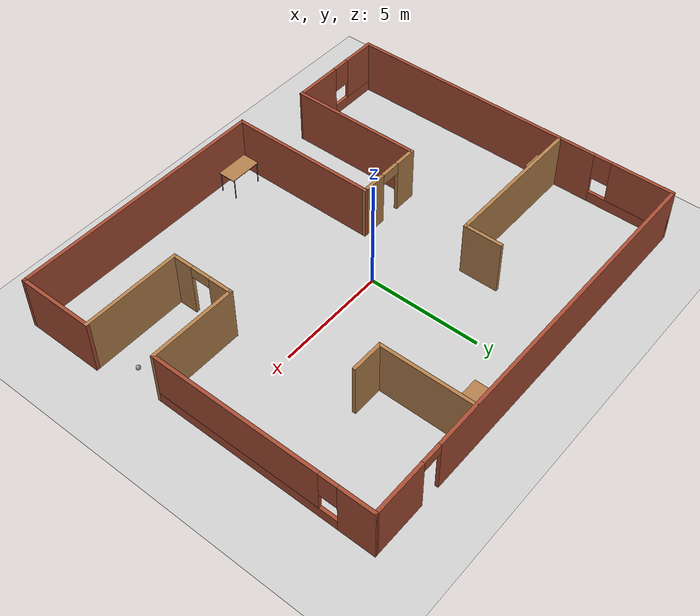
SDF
<sdf version="1.6">
 <world name="default">
  <light name="sun" type="directional">
   <pose>0 0 10 0 -0 0</pose>
   <diffuse>0.8 0.8 0.8 1</diffuse>
   <specular>0.2 0.2 0.2 1</specular>
   <attenuation>
    <range>1000</range>
    <constant>0.9</constant>
    <linear>0.01</linear>
    <quadratic>0.001</quadratic>
   </attenuation>
   <direction>-0.5 0.1 -0.9</direction>
  </light>
  <model name="ground_plane">
   <static>1</static>
   <link name="link">
    <collision name="collision">
     <geometry><plane><normal>0 0 1</normal><size>100 100</size></plane></geometry>
     <surface><friction><ode><mu>100</mu><mu2>50</mu2></ode></friction></surface>
    </collision>
    <visual name="visual">
     <cast_shadows>0</cast_shadows>
     <geometry><plane><normal>0 0 1</normal><size>100 100</size></plane></geometry>
     <material>
      <script><uri>file://media/materials/scripts/gazebo.material</uri><name>Gazebo/Grey</name></script>
     </material>
    </visual>
   </link>
  </model>
  <gravity>0 0 -9.8</gravity>
  <magnetic_field>6e-06 2.3e-05 -4.2e-05</magnetic_field>
  <atmosphere type="adiabatic"/>
  <physics name="default_physics" default="0" type="ode">
   <max_step_size>0.001</max_step_size>
   <real_time_factor>1</real_time_factor>
   <real_time_update_rate>1000</real_time_update_rate>
  </physics>
  <scene><ambient>0.4 0.4 0.4 1</ambient><background>0.7 0.7 0.7 1</background><shadows>1</shadows></scene>
  <spherical_coordinates>
   <surface_model>EARTH_WGS84</surface_model>
   <latitude_deg>0</latitude_deg>
   <longitude_deg>0</longitude_deg>
   <elevation>0</elevation>
   <heading_deg>0</heading_deg>
  </spherical_coordinates>
  <model name="newbuilding">
   <pose>0.26768 -0.427306 0 0 -0 0</pose>
   <link name="Wall_10">
    <pose>-9.5495 0.35 0 0 -0 1.5708</pose>
    <visual name="Wall_10_Visual_0">
     <pose>-1.81434 0 1.25 0 -0 0</pose>
     <geometry><box><size>11.8713 0.15 2.5</size></box></geometry>
     <material>
      <script><uri>file://media/materials/scripts/gazebo.material</uri><name>Gazebo/Bricks</name></script>
      <ambient>1 1 1 1</ambient>
     </material>
     <meta><layer>0</layer></meta>
    </visual>
    <collision name="Wall_10_Collision_0">
     <geometry><box><size>11.8713 0.15 2.5</size></box></geometry>
     <pose>-1.81434 0 1.25 0 -0 0</pose>
    </collision>
    <visual name="Wall_10_Visual_1">
     <pose>5.93566 0 0.25 0 -0 0</pose>
     <geometry><box><size>3.62868 0.15 0.5</size></box></geometry>
     <material>
      <script><uri>file://media/materials/scripts/gazebo.material</uri><name>Gazebo/Bricks</name></script>
      <ambient>1 1 1 1</ambient>
     </material>
     <meta><layer>0</layer></meta>
    </visual>
    <collision name="Wall_10_Collision_1">
     <geometry><box><size>3.62868 0.15 0.5</size></box></geometry>
     <pose>5.93566 0 0.25 0 -0 0</pose>
    </collision>
    <visual name="Wall_10_Visual_2">
     <pose>6.33566 0 1.5 0 -0 0</pose>
     <geometry><box><size>2.82868 0.15 2</size></box></geometry>
     <material>
      <script><uri>file://media/materials/scripts/gazebo.material</uri><name>Gazebo/Bricks</name></script>
      <ambient>1 1 1 1</ambient>
     </material>
     <meta><layer>0</layer></meta>
    </visual>
    <collision name="Wall_10_Collision_2">
     <geometry><box><size>2.82868 0.15 2</size></box></geometry>
     <pose>6.33566 0 1.5 0 -0 0</pose>
    </collision>
    <visual name="Wall_10_Visual_3">
     <pose>4.52132 0 1.9 0 -0 0</pose>
     <geometry><box><size>0.8 0.15 1.2</size></box></geometry>
     <material>
      <script><uri>file://media/materials/scripts/gazebo.material</uri><name>Gazebo/Bricks</name></script>
      <ambient>1 1 1 1</ambient>
     </material>
     <meta><layer>0</layer></meta>
    </visual>
    <collision name="Wall_10_Collision_3">
     <geometry><box><size>0.8 0.15 1.2</size></box></geometry>
     <pose>4.52132 0 1.9 0 -0 0</pose>
    </collision>
   </link>
   <link name="Wall_11">
    <pose>-0.249504 8.025 0 0 -0 0</pose>
    <visual name="Wall_11_Visual_0">
     <pose>-1.6974 0 1.25 0 -0 0</pose>
     <geometry><box><size>15.3552 0.15 2.5</size></box></geometry>
     <material>
      <script><uri>file://media/materials/scripts/gazebo.material</uri><name>Gazebo/Bricks</name></script>
      <ambient>1 1 1 1</ambient>
     </material>
     <meta><layer>0</layer></meta>
    </visual>
    <collision name="Wall_11_Collision_0">
     <geometry><box><size>15.3552 0.15 2.5</size></box></geometry>
     <pose>-1.6974 0 1.25 0 -0 0</pose>
    </collision>
    <visual name="Wall_11_Visual_1">
     <pose>8.1276 0 1.25 0 -0 0</pose>
     <geometry><box><size>2.49479 0.15 2.5</size></box></geometry>
     <material>
      <script><uri>file://media/materials/scripts/gazebo.material</uri><name>Gazebo/Bricks</name></script>
      <ambient>1 1 1 1</ambient>
     </material>
     <meta><layer>0</layer></meta>
    </visual>
    <collision name="Wall_11_Collision_1">
     <geometry><box><size>2.49479 0.15 2.5</size></box></geometry>
     <pose>8.1276 0 1.25 0 -0 0</pose>
    </collision>
    <visual name="Wall_11_Visual_2">
     <pose>6.4302 0 2.25 0 -0 0</pose>
     <geometry><box><size>0.9 0.15 0.5</size></box></geometry>
     <material>
      <script><uri>file://media/materials/scripts/gazebo.material</uri><name>Gazebo/Bricks</name></script>
      <ambient>1 1 1 1</ambient>
     </material>
     <meta><layer>0</layer></meta>
    </visual>
    <collision name="Wall_11_Collision_2">
     <geometry><box><size>0.9 0.15 0.5</size></box></geometry>
     <pose>6.4302 0 2.25 0 -0 0</pose>
    </collision>
   </link>
   <link name="Wall_12">
    <pose>9.0505 3.1 0 0 0 -1.5708</pose>
    <visual name="Wall_12_Visual_0">
     <pose>-4.20129 0 1.25 0 -0 0</pose>
     <geometry><box><size>1.59742 0.15 2.5</size></box></geometry>
     <material>
      <script><uri>file://media/materials/scripts/gazebo.material</uri><name>Gazebo/Bricks</name></script>
      <ambient>1 1 1 1</ambient>
     </material>
     <meta><layer>0</layer></meta>
    </visual>
    <collision name="Wall_12_Collision_0">
     <geometry><box><size>1.59742 0.15 2.5</size></box></geometry>
     <pose>-4.20129 0 1.25 0 -0 0</pose>
    </collision>
    <visual name="Wall_12_Visual_1">
     <pose>0.798711 0 0.25 0 -0 0</pose>
     <geometry><box><size>8.40258 0.15 0.5</size></box></geometry>
     <material>
      <script><uri>file://media/materials/scripts/gazebo.material</uri><name>Gazebo/Bricks</name></script>
      <ambient>1 1 1 1</ambient>
     </material>
     <meta><layer>0</layer></meta>
    </visual>
    <collision name="Wall_12_Collision_1">
     <geometry><box><size>8.40258 0.15 0.5</size></box></geometry>
     <pose>0.798711 0 0.25 0 -0 0</pose>
    </collision>
    <visual name="Wall_12_Visual_2">
     <pose>1.19871 0 1.5 0 -0 0</pose>
     <geometry><box><size>7.60258 0.15 2</size></box></geometry>
     <material>
      <script><uri>file://media/materials/scripts/gazebo.material</uri><name>Gazebo/Bricks</name></script>
      <ambient>1 1 1 1</ambient>
     </material>
     <meta><layer>0</layer></meta>
    </visual>
    <collision name="Wall_12_Collision_2">
     <geometry><box><size>7.60258 0.15 2</size></box></geometry>
     <pose>1.19871 0 1.5 0 -0 0</pose>
    </collision>
    <visual name="Wall_12_Visual_3">
     <pose>-3.00258 0 1.9 0 -0 0</pose>
     <geometry><box><size>0.8 0.15 1.2</size></box></geometry>
     <material>
      <script><uri>file://media/materials/scripts/gazebo.material</uri><name>Gazebo/Bricks</name></script>
      <ambient>1 1 1 1</ambient>
     </material>
     <meta><layer>0</layer></meta>
    </visual>
    <collision name="Wall_12_Collision_3">
     <geometry><box><size>0.8 0.15 1.2</size></box></geometry>
     <pose>-3.00258 0 1.9 0 -0 0</pose>
    </collision>
   </link>
   <link name="Wall_15">
    <collision name="Wall_15_Collision">
     <geometry><box><size>4 0.15 2.5</size></box></geometry>
     <pose>0 0 1.25 0 -0 0</pose>
    </collision>
    <visual name="Wall_15_Visual">
     <pose>0 0 1.25 0 -0 0</pose>
     <geometry><box><size>4 0.15 2.5</size></box></geometry>
     <material>
      <script><uri>file://media/materials/scripts/gazebo.material</uri><name>Gazebo/Wood</name></script>
      <ambient>1 1 1 1</ambient>
     </material>
     <meta><layer>0</layer></meta>
    </visual>
    <pose>7.1255 -1.825 0 0 -0 3.14159</pose>
   </link>
   <link name="Wall_16">
    <pose>5.2005 -3.25 0 0 0 -1.5708</pose>
    <visual name="Wall_16_Visual_0">
     <pose>-0.944828 0 1.25 0 -0 0</pose>
     <geometry><box><size>1.11034 0.15 2.5</size></box></geometry>
     <material>
      <script><uri>file://media/materials/scripts/gazebo.material</uri><name>Gazebo/Wood</name></script>
      <ambient>1 1 1 1</ambient>
     </material>
     <meta><layer>0</layer></meta>
    </visual>
    <collision name="Wall_16_Collision_0">
     <geometry><box><size>1.11034 0.15 2.5</size></box></geometry>
     <pose>-0.944828 0 1.25 0 -0 0</pose>
    </collision>
    <visual name="Wall_16_Visual_1">
     <pose>1.00517 0 1.25 0 -0 0</pose>
     <geometry><box><size>0.989656 0.15 2.5</size></box></geometry>
     <material>
      <script><uri>file://media/materials/scripts/gazebo.material</uri><name>Gazebo/Wood</name></script>
      <ambient>1 1 1 1</ambient>
     </material>
     <meta><layer>0</layer></meta>
    </visual>
    <collision name="Wall_16_Collision_1">
     <geometry><box><size>0.989656 0.15 2.5</size></box></geometry>
     <pose>1.00517 0 1.25 0 -0 0</pose>
    </collision>
    <visual name="Wall_16_Visual_2">
     <pose>0.060344 0 2.25 0 -0 0</pose>
     <geometry><box><size>0.9 0.15 0.5</size></box></geometry>
     <material>
      <script><uri>file://media/materials/scripts/gazebo.material</uri><name>Gazebo/Wood</name></script>
      <ambient>1 1 1 1</ambient>
     </material>
     <meta><layer>0</layer></meta>
    </visual>
    <collision name="Wall_16_Collision_2">
     <geometry><box><size>0.9 0.15 0.5</size></box></geometry>
     <pose>0.060344 0 2.25 0 -0 0</pose>
    </collision>
   </link>
   <link name="Wall_17">
    <collision name="Wall_17_Collision">
     <geometry><box><size>4.5 0.15 2.5</size></box></geometry>
     <pose>0 0 1.25 0 -0 0</pose>
    </collision>
    <visual name="Wall_17_Visual">
     <pose>0 0 1.25 0 -0 0</pose>
     <geometry><box><size>4.5 0.15 2.5</size></box></geometry>
     <material>
      <script><uri>file://media/materials/scripts/gazebo.material</uri><name>Gazebo/Wood</name></script>
      <ambient>1 1 1 1</ambient>
     </material>
     <meta><layer>0</layer></meta>
    </visual>
    <pose>7.3755 -4.675 0 0 -0 0</pose>
   </link>
   <link name="Wall_18">
    <collision name="Wall_18_Collision">
     <geometry><box><size>3.5 0.15 2.5</size></box></geometry>
     <pose>0 0 1.25 0 -0 0</pose>
    </collision>
    <visual name="Wall_18_Visual">
     <pose>0 0 1.25 0 -0 0</pose>
     <geometry><box><size>3.5 0.15 2.5</size></box></geometry>
     <material>
      <script><uri>file://media/materials/scripts/gazebo.material</uri><name>Gazebo/Bricks</name></script>
      <ambient>1 1 1 1</ambient>
     </material>
     <meta><layer>0</layer></meta>
    </visual>
    <pose>9.5505 -6.35 0 0 0 -1.5708</pose>
   </link>
   <link name="Wall_19">
    <collision name="Wall_19_Collision">
     <geometry><box><size>11.75 0.15 2.5</size></box></geometry>
     <pose>0 0 1.25 0 -0 0</pose>
    </collision>
    <visual name="Wall_19_Visual">
     <pose>0 0 1.25 0 -0 0</pose>
     <geometry><box><size>11.75 0.15 2.5</size></box></geometry>
     <material>
      <script><uri>file://media/materials/scripts/gazebo.material</uri><name>Gazebo/Bricks</name></script>
      <ambient>1 1 1 1</ambient>
     </material>
     <meta><layer>0</layer></meta>
    </visual>
    <pose>3.7505 -8.025 0 0 -0 3.14159</pose>
   </link>
   <link name="Wall_20">
    <collision name="Wall_20_Collision">
     <geometry><box><size>6.75 0.15 2.5</size></box></geometry>
     <pose>0 0 1.25 0 -0 0</pose>
    </collision>
    <visual name="Wall_20_Visual">
     <pose>0 0 1.25 0 -0 0</pose>
     <geometry><box><size>6.75 0.15 2.5</size></box></geometry>
     <material>
      <script><uri>file://media/materials/scripts/gazebo.material</uri><name>Gazebo/Bricks</name></script>
      <ambient>1 1 1 1</ambient>
     </material>
     <meta><layer>0</layer></meta>
    </visual>
    <pose>-2.0495 -4.725 0 0 -0 1.5708</pose>
   </link>
   <link name="Wall_21">
    <pose>-3.53778 -1.425 0 0 -0 3.14159</pose>
    <visual name="Wall_21_Visual_0">
     <pose>-0.971603 0 1.25 0 -0 0</pose>
     <geometry><box><size>1.18398 0.15 2.5</size></box></geometry>
     <material>
      <script><uri>file://media/materials/scripts/gazebo.material</uri><name>Gazebo/Wood</name></script>
      <ambient>1 1 1 1</ambient>
     </material>
     <meta><layer>0</layer></meta>
    </visual>
    <collision name="Wall_21_Collision_0">
     <geometry><box><size>1.18398 0.15 2.5</size></box></geometry>
     <pose>-0.971603 0 1.25 0 -0 0</pose>
    </collision>
    <visual name="Wall_21_Visual_1">
     <pose>1.04199 0 1.25 0 -0 0</pose>
     <geometry><box><size>1.04321 0.15 2.5</size></box></geometry>
     <material>
      <script><uri>file://media/materials/scripts/gazebo.material</uri><name>Gazebo/Wood</name></script>
      <ambient>1 1 1 1</ambient>
     </material>
     <meta><layer>0</layer></meta>
    </visual>
    <collision name="Wall_21_Collision_1">
     <geometry><box><size>1.04321 0.15 2.5</size></box></geometry>
     <pose>1.04199 0 1.25 0 -0 0</pose>
    </collision>
    <visual name="Wall_21_Visual_2">
     <pose>0.070388 0 2.25 0 -0 0</pose>
     <geometry><box><size>0.9 0.15 0.5</size></box></geometry>
     <material>
      <script><uri>file://media/materials/scripts/gazebo.material</uri><name>Gazebo/Wood</name></script>
      <ambient>1 1 1 1</ambient>
     </material>
     <meta><layer>0</layer></meta>
    </visual>
    <collision name="Wall_21_Collision_2">
     <geometry><box><size>0.9 0.15 0.5</size></box></geometry>
     <pose>0.070388 0 2.25 0 -0 0</pose>
    </collision>
   </link>
   <link name="Wall_22">
    <collision name="Wall_22_Collision">
     <geometry><box><size>6 0.15 2.5</size></box></geometry>
     <pose>0 0 1.25 0 -0 0</pose>
    </collision>
    <visual name="Wall_22_Visual">
     <pose>0 0 1.25 0 -0 0</pose>
     <geometry><box><size>6 0.15 2.5</size></box></geometry>
     <material>
      <script><uri>file://media/materials/scripts/gazebo.material</uri><name>Gazebo/Bricks</name></script>
      <ambient>1 1 1 1</ambient>
     </material>
     <meta><layer>0</layer></meta>
    </visual>
    <pose>-5.02606 -4.38059 0 0 0 -1.5708</pose>
   </link>
   <link name="Wall_26">
    <pose>-7.28778 -7.31529 0 0 0 -3.1373</pose>
    <visual name="Wall_26_Visual_0">
     <pose>-1.21852 0 1.25 0 -0 0</pose>
     <geometry><box><size>2.23644 0.15 2.5</size></box></geometry>
     <material>
      <script><uri>file://media/materials/scripts/gazebo.material</uri><name>Gazebo/Bricks</name></script>
      <ambient>1 1 1 1</ambient>
     </material>
     <meta><layer>0</layer></meta>
    </visual>
    <collision name="Wall_26_Collision_0">
     <geometry><box><size>2.23644 0.15 2.5</size></box></geometry>
     <pose>-1.21852 0 1.25 0 -0 0</pose>
    </collision>
    <visual name="Wall_26_Visual_1">
     <pose>1.11822 0 0.25 0 -0 0</pose>
     <geometry><box><size>2.43704 0.15 0.5</size></box></geometry>
     <material>
      <script><uri>file://media/materials/scripts/gazebo.material</uri><name>Gazebo/Bricks</name></script>
      <ambient>1 1 1 1</ambient>
     </material>
     <meta><layer>0</layer></meta>
    </visual>
    <collision name="Wall_26_Collision_1">
     <geometry><box><size>2.43704 0.15 0.5</size></box></geometry>
     <pose>1.11822 0 0.25 0 -0 0</pose>
    </collision>
    <visual name="Wall_26_Visual_2">
     <pose>1.51822 0 1.5 0 -0 0</pose>
     <geometry><box><size>1.63704 0.15 2</size></box></geometry>
     <material>
      <script><uri>file://media/materials/scripts/gazebo.material</uri><name>Gazebo/Bricks</name></script>
      <ambient>1 1 1 1</ambient>
     </material>
     <meta><layer>0</layer></meta>
    </visual>
    <collision name="Wall_26_Collision_2">
     <geometry><box><size>1.63704 0.15 2</size></box></geometry>
     <pose>1.51822 0 1.5 0 -0 0</pose>
    </collision>
    <visual name="Wall_26_Visual_3">
     <pose>0.299699 0 1.9 0 -0 0</pose>
     <geometry><box><size>0.8 0.15 1.2</size></box></geometry>
     <material>
      <script><uri>file://media/materials/scripts/gazebo.material</uri><name>Gazebo/Bricks</name></script>
      <ambient>1 1 1 1</ambient>
     </material>
     <meta><layer>0</layer></meta>
    </visual>
    <collision name="Wall_26_Collision_3">
     <geometry><box><size>0.8 0.15 1.2</size></box></geometry>
     <pose>0.299699 0 1.9 0 -0 0</pose>
    </collision>
   </link>
   <link name="Wall_28">
    <collision name="Wall_28_Collision">
     <geometry><box><size>6.75 0.15 2.5</size></box></geometry>
     <pose>0 0 1.25 0 -0 0</pose>
    </collision>
    <visual name="Wall_28_Visual">
     <pose>0 0 1.25 0 -0 0</pose>
     <geometry><box><size>6.75 0.15 2.5</size></box></geometry>
     <material>
      <script><uri>file://media/materials/scripts/gazebo.material</uri><name>Gazebo/Wood</name></script>
      <ambient>1 1 1 1</ambient>
     </material>
     <meta><layer>0</layer></meta>
    </visual>
    <pose>-6.2505 2.80829 0 0 -0 0</pose>
   </link>
   <link name="Wall_29">
    <collision name="Wall_29_Collision">
     <geometry><box><size>1.75 0.15 2.5</size></box></geometry>
     <pose>0 0 1.25 0 -0 0</pose>
    </collision>
    <visual name="Wall_29_Visual">
     <pose>0 0 1.25 0 -0 0</pose>
     <geometry><box><size>1.75 0.15 2.5</size></box></geometry>
     <material>
      <script><uri>file://media/materials/scripts/gazebo.material</uri><name>Gazebo/Wood</name></script>
      <ambient>1 1 1 1</ambient>
     </material>
     <meta><layer>0</layer></meta>
    </visual>
    <pose>-2.9505 3.60829 0 0 -0 1.5708</pose>
   </link>
   <link name="Wall_32">
    <collision name="Wall_32_Collision">
     <geometry><box><size>4.25 0.15 2.5</size></box></geometry>
     <pose>0 0 1.25 0 -0 0</pose>
    </collision>
    <visual name="Wall_32_Visual">
     <pose>0 0 1.25 0 -0 0</pose>
     <geometry><box><size>4.25 0.15 2.5</size></box></geometry>
     <material>
      <script><uri>file://media/materials/scripts/gazebo.material</uri><name>Gazebo/Wood</name></script>
      <ambient>1 1 1 1</ambient>
     </material>
     <meta><layer>0</layer></meta>
    </visual>
    <pose>3.70289 5.95804 0 0 0 -1.5708</pose>
   </link>
   <link name="Wall_33">
    <collision name="Wall_33_Collision">
     <geometry><box><size>1.5 0.15 2.5</size></box></geometry>
     <pose>0 0 1.25 0 -0 0</pose>
    </collision>
    <visual name="Wall_33_Visual">
     <pose>0 0 1.25 0 -0 0</pose>
     <geometry><box><size>1.5 0.15 2.5</size></box></geometry>
     <material>
      <script><uri>file://media/materials/scripts/gazebo.material</uri><name>Gazebo/Wood</name></script>
      <ambient>1 1 1 1</ambient>
     </material>
     <meta><layer>0</layer></meta>
    </visual>
    <pose>4.37789 3.90804 0 0 -0 0</pose>
   </link>
   <link name="Window_0">
    <collision name="Window_0_Collision">
     <geometry><box><size>0.8 0.17 0.8</size></box></geometry>
     <pose>0 0 0.4 0 -0 0</pose>
    </collision>
    <visual name="Window_0_Visual">
     <pose>0 0 0.4 0 -0 0</pose>
     <geometry><box><size>0.8 0.17 0.8</size></box></geometry>
     <material>
      <script><uri>file://media/materials/scripts/gazebo.material</uri><name>Gazebo/Grey</name></script>
     </material>
    </visual>
    <pose>-6.21558 7.8967 0.5 0 -0 0</pose>
   </link>
   <static>1</static>
  </model>
  <model name="table">
   <static>1</static>
   <link name="link">
    <collision name="surface">
     <pose>0 0 1 0 -0 0</pose>
     <geometry><box><size>1.5 0.8 0.03</size></box></geometry>
     <surface><friction><ode><mu>0.6</mu><mu2>0.6</mu2></ode></friction></surface>
    </collision>
    <visual name="visual1">
     <pose>0 0 1 0 -0 0</pose>
     <geometry><box><size>1.5 0.8 0.03</size></box></geometry>
     <material>
      <script><uri>file://media/materials/scripts/gazebo.material</uri><name>Gazebo/Wood</name></script>
     </material>
    </visual>
    <collision name="front_left_leg">
     <pose>0.68 0.38 0.5 0 -0 0</pose>
     <geometry><cylinder><radius>0.02</radius><length>1</length></cylinder></geometry>
    </collision>
    <visual name="front_left_leg">
     <pose>0.68 0.38 0.5 0 -0 0</pose>
     <geometry><cylinder><radius>0.02</radius><length>1</length></cylinder></geometry>
     <material>
      <script><uri>file://media/materials/scripts/gazebo.material</uri><name>Gazebo/Grey</name></script>
     </material>
    </visual>
    <collision name="front_right_leg">
     <pose>0.68 -0.38 0.5 0 -0 0</pose>
     <geometry><cylinder><radius>0.02</radius><length>1</length></cylinder></geometry>
    </collision>
    <visual name="front_right_leg">
     <pose>0.68 -0.38 0.5 0 -0 0</pose>
     <geometry><cylinder><radius>0.02</radius><length>1</length></cylinder></geometry>
     <material>
      <script><uri>file://media/materials/scripts/gazebo.material</uri><name>Gazebo/Grey</name></script>
     </material>
    </visual>
    <collision name="back_right_leg">
     <pose>-0.68 -0.38 0.5 0 -0 0</pose>
     <geometry><cylinder><radius>0.02</radius><length>1</length></cylinder></geometry>
    </collision>
    <visual name="back_right_leg">
     <pose>-0.68 -0.38 0.5 0 -0 0</pose>
     <geometry><cylinder><radius>0.02</radius><length>1</length></cylinder></geometry>
     <material>
      <script><uri>file://media/materials/scripts/gazebo.material</uri><name>Gazebo/Grey</name></script>
     </material>
    </visual>
    <collision name="back_left_leg">
     <pose>-0.68 0.38 0.5 0 -0 0</pose>
     <geometry><cylinder><radius>0.02</radius><length>1</length></cylinder></geometry>
    </collision>
    <visual name="back_left_leg">
     <pose>-0.68 0.38 0.5 0 -0 0</pose>
     <geometry><cylinder><radius>0.02</radius><length>1</length></cylinder></geometry>
     <material>
      <script><uri>file://media/materials/scripts/gazebo.material</uri><name>Gazebo/Grey</name></script>
     </material>
    </visual>
   </link>
   <pose>-0.714825 -7.78292 0 0 -0 0</pose>
  </model>
  <model name="table_0">
   <static>1</static>
   <link name="link">
    <collision name="surface">
     <pose>0 0 1 0 -0 0</pose>
     <geometry><box><size>1.5 0.8 0.03</size></box></geometry>
     <surface><friction><ode><mu>0.6</mu><mu2>0.6</mu2></ode></friction></surface>
    </collision>
    <visual name="visual1">
     <pose>0 0 1 0 -0 0</pose>
     <geometry><box><size>1.5 0.8 0.03</size></box></geometry>
     <material>
      <script><uri>file://media/materials/scripts/gazebo.material</uri><name>Gazebo/Wood</name></script>
     </material>
    </visual>
    <collision name="front_left_leg">
     <pose>0.68 0.38 0.5 0 -0 0</pose>
     <geometry><cylinder><radius>0.02</radius><length>1</length></cylinder></geometry>
    </collision>
    <visual name="front_left_leg">
     <pose>0.68 0.38 0.5 0 -0 0</pose>
     <geometry><cylinder><radius>0.02</radius><length>1</length></cylinder></geometry>
     <material>
      <script><uri>file://media/materials/scripts/gazebo.material</uri><name>Gazebo/Grey</name></script>
     </material>
    </visual>
    <collision name="front_right_leg">
     <pose>0.68 -0.38 0.5 0 -0 0</pose>
     <geometry><cylinder><radius>0.02</radius><length>1</length></cylinder></geometry>
    </collision>
    <visual name="front_right_leg">
     <pose>0.68 -0.38 0.5 0 -0 0</pose>
     <geometry><cylinder><radius>0.02</radius><length>1</length></cylinder></geometry>
     <material>
      <script><uri>file://media/materials/scripts/gazebo.material</uri><name>Gazebo/Grey</name></script>
     </material>
    </visual>
    <collision name="back_right_leg">
     <pose>-0.68 -0.38 0.5 0 -0 0</pose>
     <geometry><cylinder><radius>0.02</radius><length>1</length></cylinder></geometry>
    </collision>
    <visual name="back_right_leg">
     <pose>-0.68 -0.38 0.5 0 -0 0</pose>
     <geometry><cylinder><radius>0.02</radius><length>1</length></cylinder></geometry>
     <material>
      <script><uri>file://media/materials/scripts/gazebo.material</uri><name>Gazebo/Grey</name></script>
     </material>
    </visual>
    <collision name="back_left_leg">
     <pose>-0.68 0.38 0.5 0 -0 0</pose>
     <geometry><cylinder><radius>0.02</radius><length>1</length></cylinder></geometry>
    </collision>
    <visual name="back_left_leg">
     <pose>-0.68 0.38 0.5 0 -0 0</pose>
     <geometry><cylinder><radius>0.02</radius><length>1</length></cylinder></geometry>
     <material>
      <script><uri>file://media/materials/scripts/gazebo.material</uri><name>Gazebo/Grey</name></script>
     </material>
    </visual>
   </link>
   <pose>2.8885 6.7553 0 0 -0 0</pose>
  </model>
  <model name="bookshelf">
   <static>1</static>
   <link name="link">
    <inertial><mass>1</mass></inertial>
    <collision name="back">
     <pose>0 0.005 0.6 0 -0 0</pose>
     <geometry><box><size>0.9 0.01 1.2</size></box></geometry>
    </collision>
    <visual name="visual1">
     <pose>0 0.005 0.6 0 -0 0</pose>
     <geometry><box><size>0.9 0.01 1.2</size></box></geometry>
     <material>
      <script><uri>file://media/materials/scripts/gazebo.material</uri><name>Gazebo/Wood</name></script>
     </material>
    </visual>
    <collision name="left_side">
     <pose>0.45 -0.195 0.6 0 -0 0</pose>
     <geometry><box><size>0.02 0.4 1.2</size></box></geometry>
    </collision>
    <visual name="visual2">
     <pose>0.45 -0.195 0.6 0 -0 0</pose>
     <geometry><box><size>0.02 0.4 1.2</size></box></geometry>
     <material>
      <script><uri>file://media/materials/scripts/gazebo.material</uri><name>Gazebo/Wood</name></script>
     </material>
    </visual>
    <collision name="right_side">
     <pose>-0.45 -0.195 0.6 0 -0 0</pose>
     <geometry><box><size>0.02 0.4 1.2</size></box></geometry>
    </collision>
    <visual name="visual3">
     <pose>-0.45 -0.195 0.6 0 -0 0</pose>
     <geometry><box><size>0.02 0.4 1.2</size></box></geometry>
     <material>
      <script><uri>file://media/materials/scripts/gazebo.material</uri><name>Gazebo/Wood</name></script>
     </material>
    </visual>
    <collision name="bottom">
     <pose>0 -0.195 0.03 0 -0 0</pose>
     <geometry><box><size>0.88 0.4 0.06</size></box></geometry>
    </collision>
    <visual name="visual4">
     <pose>0 -0.195 0.03 0 -0 0</pose>
     <geometry><box><size>0.88 0.4 0.06</size></box></geometry>
     <material>
      <script><uri>file://media/materials/scripts/gazebo.material</uri><name>Gazebo/Wood</name></script>
     </material>
    </visual>
    <collision name="top">
     <pose>0 -0.195 1.19 0 -0 0</pose>
     <geometry><box><size>0.88 0.4 0.02</size></box></geometry>
    </collision>
    <visual name="visual5">
     <pose>0 -0.195 1.19 0 -0 0</pose>
     <geometry><box><size>0.88 0.4 0.02</size></box></geometry>
     <material>
      <script><uri>file://media/materials/scripts/gazebo.material</uri><name>Gazebo/Wood</name></script>
     </material>
    </visual>
    <collision name="low_shelf">
     <pose>0 -0.195 0.43 0 -0 0</pose>
     <geometry><box><size>0.88 0.4 0.02</size></box></geometry>
    </collision>
    <visual name="visual6">
     <pose>0 -0.195 0.43 0 -0 0</pose>
     <geometry><box><size>0.88 0.4 0.02</size></box></geometry>
     <material>
      <script><uri>file://media/materials/scripts/gazebo.material</uri><name>Gazebo/Wood</name></script>
     </material>
    </visual>
    <collision name="high_shelf">
     <pose>0 -0.195 0.8 0 -0 0</pose>
     <geometry><box><size>0.88 0.4 0.02</size></box></geometry>
    </collision>
    <visual name="visual7">
     <pose>0 -0.195 0.8 0 -0 0</pose>
     <geometry><box><size>0.88 0.4 0.02</size></box></geometry>
     <material>
      <script><uri>file://media/materials/scripts/gazebo.material</uri><name>Gazebo/Wood</name></script>
     </material>
    </visual>
   </link>
   <pose>-8.67012 1.92235 0 0 -0 0</pose>
  </model>
  <model name="bookshelf_0">
   <static>1</static>
   <link name="link">
    <inertial><mass>1</mass></inertial>
    <collision name="back">
     <pose>0 0.005 0.6 0 -0 0</pose>
     <geometry><box><size>0.9 0.01 1.2</size></box></geometry>
    </collision>
    <visual name="visual1">
     <pose>0 0.005 0.6 0 -0 0</pose>
     <geometry><box><size>0.9 0.01 1.2</size></box></geometry>
     <material>
      <script><uri>file://media/materials/scripts/gazebo.material</uri><name>Gazebo/Wood</name></script>
     </material>
    </visual>
    <collision name="left_side">
     <pose>0.45 -0.195 0.6 0 -0 0</pose>
     <geometry><box><size>0.02 0.4 1.2</size></box></geometry>
    </collision>
    <visual name="visual2">
     <pose>0.45 -0.195 0.6 0 -0 0</pose>
     <geometry><box><size>0.02 0.4 1.2</size></box></geometry>
     <material>
      <script><uri>file://media/materials/scripts/gazebo.material</uri><name>Gazebo/Wood</name></script>
     </material>
    </visual>
    <collision name="right_side">
     <pose>-0.45 -0.195 0.6 0 -0 0</pose>
     <geometry><box><size>0.02 0.4 1.2</size></box></geometry>
    </collision>
    <visual name="visual3">
     <pose>-0.45 -0.195 0.6 0 -0 0</pose>
     <geometry><box><size>0.02 0.4 1.2</size></box></geometry>
     <material>
      <script><uri>file://media/materials/scripts/gazebo.material</uri><name>Gazebo/Wood</name></script>
     </material>
    </visual>
    <collision name="bottom">
     <pose>0 -0.195 0.03 0 -0 0</pose>
     <geometry><box><size>0.88 0.4 0.06</size></box></geometry>
    </collision>
    <visual name="visual4">
     <pose>0 -0.195 0.03 0 -0 0</pose>
     <geometry><box><size>0.88 0.4 0.06</size></box></geometry>
     <material>
      <script><uri>file://media/materials/scripts/gazebo.material</uri><name>Gazebo/Wood</name></script>
     </material>
    </visual>
    <collision name="top">
     <pose>0 -0.195 1.19 0 -0 0</pose>
     <geometry><box><size>0.88 0.4 0.02</size></box></geometry>
    </collision>
    <visual name="visual5">
     <pose>0 -0.195 1.19 0 -0 0</pose>
     <geometry><box><size>0.88 0.4 0.02</size></box></geometry>
     <material>
      <script><uri>file://media/materials/scripts/gazebo.material</uri><name>Gazebo/Wood</name></script>
     </material>
    </visual>
    <collision name="low_shelf">
     <pose>0 -0.195 0.43 0 -0 0</pose>
     <geometry><box><size>0.88 0.4 0.02</size></box></geometry>
    </collision>
    <visual name="visual6">
     <pose>0 -0.195 0.43 0 -0 0</pose>
     <geometry><box><size>0.88 0.4 0.02</size></box></geometry>
     <material>
      <script><uri>file://media/materials/scripts/gazebo.material</uri><name>Gazebo/Wood</name></script>
     </material>
    </visual>
    <collision name="high_shelf">
     <pose>0 -0.195 0.8 0 -0 0</pose>
     <geometry><box><size>0.88 0.4 0.02</size></box></geometry>
    </collision>
    <visual name="visual7">
     <pose>0 -0.195 0.8 0 -0 0</pose>
     <geometry><box><size>0.88 0.4 0.02</size></box></geometry>
     <material>
      <script><uri>file://media/materials/scripts/gazebo.material</uri><name>Gazebo/Wood</name></script>
     </material>
    </visual>
   </link>
   <pose>-8.70032 7.51738 0 0 -0 0</pose>
  </model>
  <model name="my_ball">
   <link name="link_0">
    <inertial>
     <mass>1</mass>
     <inertia><ixx>0.1</ixx><ixy>0</ixy><ixz>0</ixz><iyy>0.1</iyy><iyz>0</iyz><izz>0.1</izz></inertia>
    </inertial>
    <visual name="visual">
     <geometry><sphere><radius>0.1</radius></sphere></geometry>
     <material>
      <lighting>1</lighting>
      <script><uri>file://media/materials/scripts/gazebo.material</uri><name>Gazebo/Grey</name></script>
      <shader type="pixel"><normal_map>__default__</normal_map></shader>
      <ambient>1 1 1 1</ambient>
      <diffuse>1 1 1 1</diffuse>
      <specular>1 1 1 1</specular>
      <emissive>1 1 1 1</emissive>
     </material>
    </visual>
    <collision name="collision">
     <geometry><sphere><radius>0.1</radius></sphere></geometry>
     <surface>
      <friction>
       <ode><mu>1</mu><mu2>1</mu2><fdir1>0 0 0</fdir1><slip1>0</slip1><slip2>0</slip2></ode>
       <torsional>
        <coefficient>1</coefficient>
        <patch_radius>0</patch_radius>
        <surface_radius>0</surface_radius>
        <use_patch_radius>1</use_patch_radius>
        <ode><slip>0</slip></ode>
       </torsional>
      </friction>
      <bounce><restitution_coefficient>0</restitution_coefficient><threshold>1e+06</threshold></bounce>
      <contact>
       <collide_without_contact>0</collide_without_contact>
       <collide_without_contact_bitmask>1</collide_without_contact_bitmask>
       <collide_bitmask>1</collide_bitmask>
       <ode>
        <soft_cfm>0</soft_cfm>
        <soft_erp>0.2</soft_erp>
        <kp>1e+13</kp>
        <kd>1</kd>
        <max_vel>0.01</max_vel>
        <min_depth>0</min_depth>
       </ode>
       <bullet>
        <split_impulse>1</split_impulse>
        <split_impulse_penetration_threshold>-0.01</split_impulse_penetration_threshold>
        <soft_cfm>0</soft_cfm>
        <soft_erp>0.2</soft_erp>
        <kp>1e+13</kp>
        <kd>1</kd>
       </bullet>
      </contact>
     </surface>
    </collision>
   </link>
   <static>0</static>
   <pose>8.88186 -3.89698 0.1 0 -0 0</pose>
  </model>
 </world>
</sdf>
